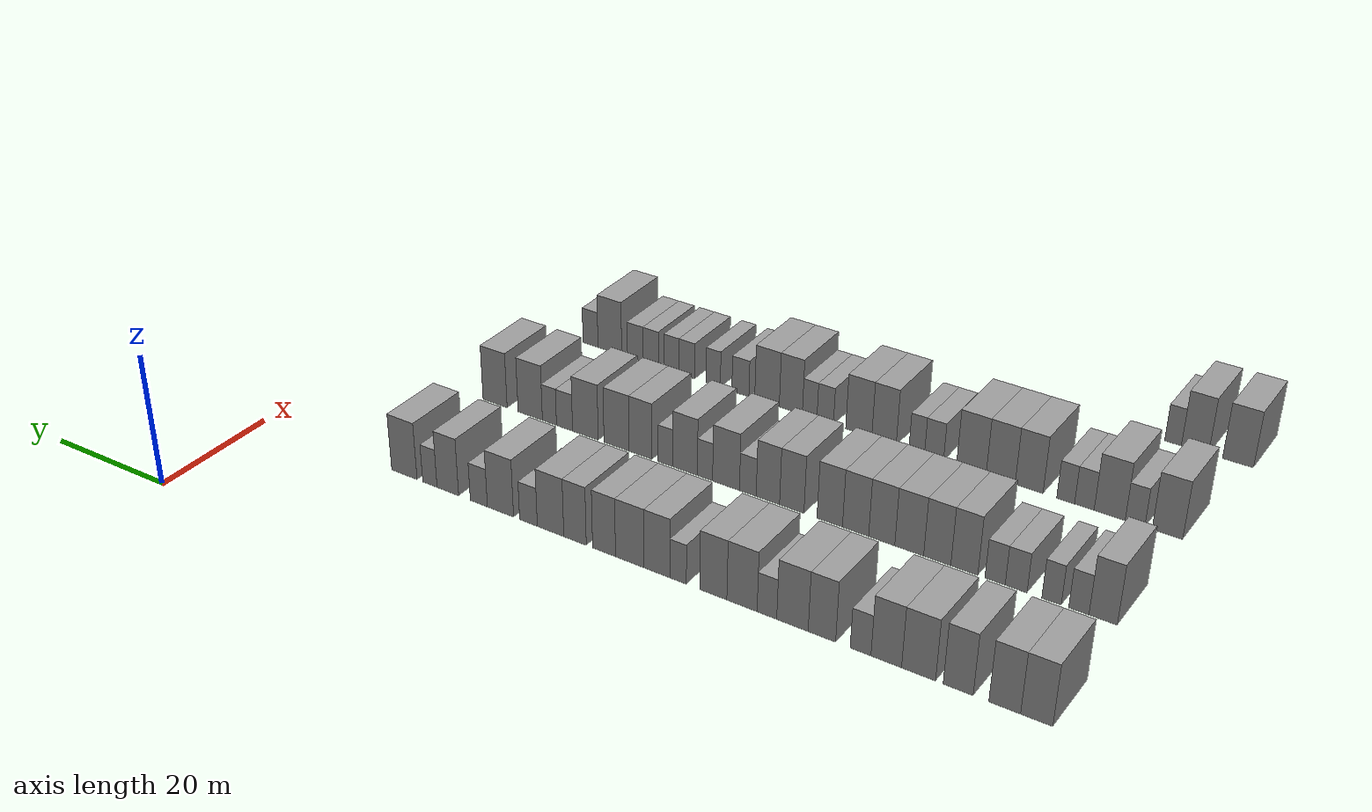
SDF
<sdf version="1.6">
 <world name="default">
  <model name="building_69">
   <static>1</static>
   <pose>25.0000 -119.9293 0 0.000000 0.000000 0.000000</pose>
   <link name="link">
    <pose>0 0 4.50 0 0 0</pose>
    <collision name="collision"><geometry><box><size>10.0000 4.0028 9.0000</size></box></geometry></collision>
    <visual name="visual">
     <cast_shadows>0</cast_shadows>
     <geometry><box><size>10.0000 4.0028 9.0000</size></box></geometry>
     <material>
      <script>
       <uri>model://grey_wall/materials/scripts</uri>
       <uri>model://grey_wall/materials/textures</uri>
       <name>vrc/grey_wall</name>
      </script>
     </material>
    </visual>
   </link>
  </model>
  <model name="building_70">
   <static>1</static>
   <pose>25.0000 -115.9255 0 0.000000 0.000000 0.000000</pose>
   <link name="link">
    <pose>0 0 4.50 0 0 0</pose>
    <collision name="collision"><geometry><box><size>10.0000 4.0048 9.0000</size></box></geometry></collision>
    <visual name="visual">
     <cast_shadows>0</cast_shadows>
     <geometry><box><size>10.0000 4.0048 9.0000</size></box></geometry>
     <material>
      <script>
       <uri>model://grey_wall/materials/scripts</uri>
       <uri>model://grey_wall/materials/textures</uri>
       <name>vrc/grey_wall</name>
      </script>
     </material>
    </visual>
   </link>
  </model>
  <model name="building_71">
   <static>1</static>
   <pose>25.0000 -109.9842 0 0.000000 0.000000 0.000000</pose>
   <link name="link">
    <pose>0 0 4.50 0 0 0</pose>
    <collision name="collision"><geometry><box><size>10.0000 3.8778 9.0000</size></box></geometry></collision>
    <visual name="visual">
     <cast_shadows>0</cast_shadows>
     <geometry><box><size>10.0000 3.8778 9.0000</size></box></geometry>
     <material>
      <script>
       <uri>model://grey_wall/materials/scripts</uri>
       <uri>model://grey_wall/materials/textures</uri>
       <name>vrc/grey_wall</name>
      </script>
     </material>
    </visual>
   </link>
  </model>
  <model name="building_72">
   <static>1</static>
   <pose>25.0000 -104.8020 0 0.000000 0.000000 0.000000</pose>
   <link name="link">
    <pose>0 0 4.50 0 0 0</pose>
    <collision name="collision"><geometry><box><size>10.0000 4.4866 9.0000</size></box></geometry></collision>
    <visual name="visual">
     <cast_shadows>0</cast_shadows>
     <geometry><box><size>10.0000 4.4866 9.0000</size></box></geometry>
     <material>
      <script>
       <uri>model://grey_wall/materials/scripts</uri>
       <uri>model://grey_wall/materials/textures</uri>
       <name>vrc/grey_wall</name>
      </script>
     </material>
    </visual>
   </link>
  </model>
  <model name="building_73">
   <static>1</static>
   <pose>25.0000 -100.5021 0 0.000000 0.000000 0.000000</pose>
   <link name="link">
    <pose>0 0 4.50 0 0 0</pose>
    <collision name="collision"><geometry><box><size>10.0000 4.1132 9.0000</size></box></geometry></collision>
    <visual name="visual">
     <cast_shadows>0</cast_shadows>
     <geometry><box><size>10.0000 4.1132 9.0000</size></box></geometry>
     <material>
      <script>
       <uri>model://grey_wall/materials/scripts</uri>
       <uri>model://grey_wall/materials/textures</uri>
       <name>vrc/grey_wall</name>
      </script>
     </material>
    </visual>
   </link>
  </model>
  <model name="building_74">
   <static>1</static>
   <pose>25.0000 -97.0339 0 0.000000 0.000000 0.000000</pose>
   <link name="link">
    <pose>0 0 3.00 0 0 0</pose>
    <collision name="collision"><geometry><box><size>10.0000 2.8233 6.0000</size></box></geometry></collision>
    <visual name="visual">
     <cast_shadows>0</cast_shadows>
     <geometry><box><size>10.0000 2.8233 6.0000</size></box></geometry>
     <material>
      <script>
       <uri>model://grey_wall/materials/scripts</uri>
       <uri>model://grey_wall/materials/textures</uri>
       <name>vrc/grey_wall</name>
      </script>
     </material>
    </visual>
   </link>
  </model>
  <model name="building_75">
   <static>1</static>
   <pose>25.0000 -91.7077 0 0.000000 0.000000 0.000000</pose>
   <link name="link">
    <pose>0 0 4.50 0 0 0</pose>
    <collision name="collision"><geometry><box><size>10.0000 3.8291 9.0000</size></box></geometry></collision>
    <visual name="visual">
     <cast_shadows>0</cast_shadows>
     <geometry><box><size>10.0000 3.8291 9.0000</size></box></geometry>
     <material>
      <script>
       <uri>model://grey_wall/materials/scripts</uri>
       <uri>model://grey_wall/materials/textures</uri>
       <name>vrc/grey_wall</name>
      </script>
     </material>
    </visual>
   </link>
  </model>
  <model name="building_76">
   <static>1</static>
   <pose>25.0000 -87.5703 0 0.000000 0.000000 0.000000</pose>
   <link name="link">
    <pose>0 0 4.50 0 0 0</pose>
    <collision name="collision"><geometry><box><size>10.0000 4.4456 9.0000</size></box></geometry></collision>
    <visual name="visual">
     <cast_shadows>0</cast_shadows>
     <geometry><box><size>10.0000 4.4456 9.0000</size></box></geometry>
     <material>
      <script>
       <uri>model://grey_wall/materials/scripts</uri>
       <uri>model://grey_wall/materials/textures</uri>
       <name>vrc/grey_wall</name>
      </script>
     </material>
    </visual>
   </link>
  </model>
  <model name="building_77">
   <static>1</static>
   <pose>25.0000 -83.9391 0 0.000000 0.000000 0.000000</pose>
   <link name="link">
    <pose>0 0 3.00 0 0 0</pose>
    <collision name="collision"><geometry><box><size>10.0000 2.8168 6.0000</size></box></geometry></collision>
    <visual name="visual">
     <cast_shadows>0</cast_shadows>
     <geometry><box><size>10.0000 2.8168 6.0000</size></box></geometry>
     <material>
      <script>
       <uri>model://grey_wall/materials/scripts</uri>
       <uri>model://grey_wall/materials/textures</uri>
       <name>vrc/grey_wall</name>
      </script>
     </material>
    </visual>
   </link>
  </model>
  <model name="building_78">
   <static>1</static>
   <pose>25.0000 -80.3285 0 0.000000 0.000000 0.000000</pose>
   <link name="link">
    <pose>0 0 4.50 0 0 0</pose>
    <collision name="collision"><geometry><box><size>10.0000 4.4043 9.0000</size></box></geometry></collision>
    <visual name="visual">
     <cast_shadows>0</cast_shadows>
     <geometry><box><size>10.0000 4.4043 9.0000</size></box></geometry>
     <material>
      <script>
       <uri>model://grey_wall/materials/scripts</uri>
       <uri>model://grey_wall/materials/textures</uri>
       <name>vrc/grey_wall</name>
      </script>
     </material>
    </visual>
   </link>
  </model>
  <model name="building_79">
   <static>1</static>
   <pose>25.0000 -76.1174 0 0.000000 0.000000 0.000000</pose>
   <link name="link">
    <pose>0 0 4.50 0 0 0</pose>
    <collision name="collision"><geometry><box><size>10.0000 4.0180 9.0000</size></box></geometry></collision>
    <visual name="visual">
     <cast_shadows>0</cast_shadows>
     <geometry><box><size>10.0000 4.0180 9.0000</size></box></geometry>
     <material>
      <script>
       <uri>model://grey_wall/materials/scripts</uri>
       <uri>model://grey_wall/materials/textures</uri>
       <name>vrc/grey_wall</name>
      </script>
     </material>
    </visual>
   </link>
  </model>
  <model name="building_80">
   <static>1</static>
   <pose>25.0000 -70.8744 0 0.000000 0.000000 0.000000</pose>
   <link name="link">
    <pose>0 0 3.00 0 0 0</pose>
    <collision name="collision"><geometry><box><size>10.0000 2.4681 6.0000</size></box></geometry></collision>
    <visual name="visual">
     <cast_shadows>0</cast_shadows>
     <geometry><box><size>10.0000 2.4681 6.0000</size></box></geometry>
     <material>
      <script>
       <uri>model://grey_wall/materials/scripts</uri>
       <uri>model://grey_wall/materials/textures</uri>
       <name>vrc/grey_wall</name>
      </script>
     </material>
    </visual>
   </link>
  </model>
  <model name="building_81">
   <static>1</static>
   <pose>25.0000 -67.6625 0 0.000000 0.000000 0.000000</pose>
   <link name="link">
    <pose>0 0 4.50 0 0 0</pose>
    <collision name="collision"><geometry><box><size>10.0000 3.9556 9.0000</size></box></geometry></collision>
    <visual name="visual">
     <cast_shadows>0</cast_shadows>
     <geometry><box><size>10.0000 3.9556 9.0000</size></box></geometry>
     <material>
      <script>
       <uri>model://grey_wall/materials/scripts</uri>
       <uri>model://grey_wall/materials/textures</uri>
       <name>vrc/grey_wall</name>
      </script>
     </material>
    </visual>
   </link>
  </model>
  <model name="building_82">
   <static>1</static>
   <pose>25.0000 -63.4685 0 0.000000 0.000000 0.000000</pose>
   <link name="link">
    <pose>0 0 4.50 0 0 0</pose>
    <collision name="collision"><geometry><box><size>10.0000 4.4324 9.0000</size></box></geometry></collision>
    <visual name="visual">
     <cast_shadows>0</cast_shadows>
     <geometry><box><size>10.0000 4.4324 9.0000</size></box></geometry>
     <material>
      <script>
       <uri>model://grey_wall/materials/scripts</uri>
       <uri>model://grey_wall/materials/textures</uri>
       <name>vrc/grey_wall</name>
      </script>
     </material>
    </visual>
   </link>
  </model>
  <model name="building_83">
   <static>1</static>
   <pose>25.0000 -59.4488 0 0.000000 0.000000 0.000000</pose>
   <link name="link">
    <pose>0 0 4.50 0 0 0</pose>
    <collision name="collision"><geometry><box><size>10.0000 3.6071 9.0000</size></box></geometry></collision>
    <visual name="visual">
     <cast_shadows>0</cast_shadows>
     <geometry><box><size>10.0000 3.6071 9.0000</size></box></geometry>
     <material>
      <script>
       <uri>model://grey_wall/materials/scripts</uri>
       <uri>model://grey_wall/materials/textures</uri>
       <name>vrc/grey_wall</name>
      </script>
     </material>
    </visual>
   </link>
  </model>
  <model name="building_84">
   <static>1</static>
   <pose>25.0000 -54.8431 0 0.000000 0.000000 0.000000</pose>
   <link name="link">
    <pose>0 0 4.50 0 0 0</pose>
    <collision name="collision"><geometry><box><size>10.0000 3.6042 9.0000</size></box></geometry></collision>
    <visual name="visual">
     <cast_shadows>0</cast_shadows>
     <geometry><box><size>10.0000 3.6042 9.0000</size></box></geometry>
     <material>
      <script>
       <uri>model://grey_wall/materials/scripts</uri>
       <uri>model://grey_wall/materials/textures</uri>
       <name>vrc/grey_wall</name>
      </script>
     </material>
    </visual>
   </link>
  </model>
  <model name="building_85">
   <static>1</static>
   <pose>25.0000 -50.8898 0 0.000000 0.000000 0.000000</pose>
   <link name="link">
    <pose>0 0 4.50 0 0 0</pose>
    <collision name="collision"><geometry><box><size>10.0000 4.3024 9.0000</size></box></geometry></collision>
    <visual name="visual">
     <cast_shadows>0</cast_shadows>
     <geometry><box><size>10.0000 4.3024 9.0000</size></box></geometry>
     <material>
      <script>
       <uri>model://grey_wall/materials/scripts</uri>
       <uri>model://grey_wall/materials/textures</uri>
       <name>vrc/grey_wall</name>
      </script>
     </material>
    </visual>
   </link>
  </model>
  <model name="building_86">
   <static>1</static>
   <pose>25.0000 -47.2796 0 0.000000 0.000000 0.000000</pose>
   <link name="link">
    <pose>0 0 3.00 0 0 0</pose>
    <collision name="collision"><geometry><box><size>10.0000 2.9182 6.0000</size></box></geometry></collision>
    <visual name="visual">
     <cast_shadows>0</cast_shadows>
     <geometry><box><size>10.0000 2.9182 6.0000</size></box></geometry>
     <material>
      <script>
       <uri>model://grey_wall/materials/scripts</uri>
       <uri>model://grey_wall/materials/textures</uri>
       <name>vrc/grey_wall</name>
      </script>
     </material>
    </visual>
   </link>
  </model>
  <model name="building_87">
   <static>1</static>
   <pose>25.0000 -42.6249 0 0.000000 0.000000 0.000000</pose>
   <link name="link">
    <pose>0 0 4.50 0 0 0</pose>
    <collision name="collision"><geometry><box><size>10.0000 4.3910 9.0000</size></box></geometry></collision>
    <visual name="visual">
     <cast_shadows>0</cast_shadows>
     <geometry><box><size>10.0000 4.3910 9.0000</size></box></geometry>
     <material>
      <script>
       <uri>model://grey_wall/materials/scripts</uri>
       <uri>model://grey_wall/materials/textures</uri>
       <name>vrc/grey_wall</name>
      </script>
     </material>
    </visual>
   </link>
  </model>
  <model name="building_88">
   <static>1</static>
   <pose>25.0000 -38.9806 0 0.000000 0.000000 0.000000</pose>
   <link name="link">
    <pose>0 0 3.00 0 0 0</pose>
    <collision name="collision"><geometry><box><size>10.0000 2.8977 6.0000</size></box></geometry></collision>
    <visual name="visual">
     <cast_shadows>0</cast_shadows>
     <geometry><box><size>10.0000 2.8977 6.0000</size></box></geometry>
     <material>
      <script>
       <uri>model://grey_wall/materials/scripts</uri>
       <uri>model://grey_wall/materials/textures</uri>
       <name>vrc/grey_wall</name>
      </script>
     </material>
    </visual>
   </link>
  </model>
  <model name="building_89">
   <static>1</static>
   <pose>25.0000 -33.6616 0 0.000000 0.000000 0.000000</pose>
   <link name="link">
    <pose>0 0 4.50 0 0 0</pose>
    <collision name="collision"><geometry><box><size>10.0000 3.7403 9.0000</size></box></geometry></collision>
    <visual name="visual">
     <cast_shadows>0</cast_shadows>
     <geometry><box><size>10.0000 3.7403 9.0000</size></box></geometry>
     <material>
      <script>
       <uri>model://grey_wall/materials/scripts</uri>
       <uri>model://grey_wall/materials/textures</uri>
       <name>vrc/grey_wall</name>
      </script>
     </material>
    </visual>
   </link>
  </model>
  <model name="building_90">
   <static>1</static>
   <pose>25.0000 -30.5410 0 0.000000 0.000000 0.000000</pose>
   <link name="link">
    <pose>0 0 3.00 0 0 0</pose>
    <collision name="collision"><geometry><box><size>10.0000 2.5008 6.0000</size></box></geometry></collision>
    <visual name="visual">
     <cast_shadows>0</cast_shadows>
     <geometry><box><size>10.0000 2.5008 6.0000</size></box></geometry>
     <material>
      <script>
       <uri>model://grey_wall/materials/scripts</uri>
       <uri>model://grey_wall/materials/textures</uri>
       <name>vrc/grey_wall</name>
      </script>
     </material>
    </visual>
   </link>
  </model>
  <model name="building_91">
   <static>1</static>
   <pose>25.0000 -26.0437 0 0.000000 0.000000 0.000000</pose>
   <link name="link">
    <pose>0 0 4.50 0 0 0</pose>
    <collision name="collision"><geometry><box><size>10.0000 4.4938 9.0000</size></box></geometry></collision>
    <visual name="visual">
     <cast_shadows>0</cast_shadows>
     <geometry><box><size>10.0000 4.4938 9.0000</size></box></geometry>
     <material>
      <script>
       <uri>model://grey_wall/materials/scripts</uri>
       <uri>model://grey_wall/materials/textures</uri>
       <name>vrc/grey_wall</name>
      </script>
     </material>
    </visual>
   </link>
  </model>
  <model name="building_253">
   <static>1</static>
   <pose>47.0000 -118.9703 0 0.000000 0.000000 0.000000</pose>
   <link name="link">
    <pose>0 0 4.50 0 0 0</pose>
    <collision name="collision"><geometry><box><size>10.0000 3.7164 9.0000</size></box></geometry></collision>
    <visual name="visual">
     <cast_shadows>0</cast_shadows>
     <geometry><box><size>10.0000 3.7164 9.0000</size></box></geometry>
     <material>
      <script>
       <uri>model://grey_wall/materials/scripts</uri>
       <uri>model://grey_wall/materials/textures</uri>
       <name>vrc/grey_wall</name>
      </script>
     </material>
    </visual>
   </link>
  </model>
  <model name="building_254">
   <static>1</static>
   <pose>47.0000 -115.7738 0 0.000000 0.000000 0.000000</pose>
   <link name="link">
    <pose>0 0 3.00 0 0 0</pose>
    <collision name="collision"><geometry><box><size>10.0000 2.6766 6.0000</size></box></geometry></collision>
    <visual name="visual">
     <cast_shadows>0</cast_shadows>
     <geometry><box><size>10.0000 2.6766 6.0000</size></box></geometry>
     <material>
      <script>
       <uri>model://grey_wall/materials/scripts</uri>
       <uri>model://grey_wall/materials/textures</uri>
       <name>vrc/grey_wall</name>
      </script>
     </material>
    </visual>
   </link>
  </model>
  <model name="building_255">
   <static>1</static>
   <pose>47.0000 -112.1340 0 0.000000 0.000000 0.000000</pose>
   <link name="link">
    <pose>0 0 3.00 0 0 0</pose>
    <collision name="collision"><geometry><box><size>10.0000 2.6032 6.0000</size></box></geometry></collision>
    <visual name="visual">
     <cast_shadows>0</cast_shadows>
     <geometry><box><size>10.0000 2.6032 6.0000</size></box></geometry>
     <material>
      <script>
       <uri>model://grey_wall/materials/scripts</uri>
       <uri>model://grey_wall/materials/textures</uri>
       <name>vrc/grey_wall</name>
      </script>
     </material>
    </visual>
   </link>
  </model>
  <model name="building_256">
   <static>1</static>
   <pose>47.0000 -107.3387 0 0.000000 0.000000 0.000000</pose>
   <link name="link">
    <pose>0 0 3.00 0 0 0</pose>
    <collision name="collision"><geometry><box><size>10.0000 2.9873 6.0000</size></box></geometry></collision>
    <visual name="visual">
     <cast_shadows>0</cast_shadows>
     <geometry><box><size>10.0000 2.9873 6.0000</size></box></geometry>
     <material>
      <script>
       <uri>model://grey_wall/materials/scripts</uri>
       <uri>model://grey_wall/materials/textures</uri>
       <name>vrc/grey_wall</name>
      </script>
     </material>
    </visual>
   </link>
  </model>
  <model name="building_257">
   <static>1</static>
   <pose>47.0000 -104.4470 0 0.000000 0.000000 0.000000</pose>
   <link name="link">
    <pose>0 0 3.00 0 0 0</pose>
    <collision name="collision"><geometry><box><size>10.0000 2.7962 6.0000</size></box></geometry></collision>
    <visual name="visual">
     <cast_shadows>0</cast_shadows>
     <geometry><box><size>10.0000 2.7962 6.0000</size></box></geometry>
     <material>
      <script>
       <uri>model://grey_wall/materials/scripts</uri>
       <uri>model://grey_wall/materials/textures</uri>
       <name>vrc/grey_wall</name>
      </script>
     </material>
    </visual>
   </link>
  </model>
  <model name="building_258">
   <static>1</static>
   <pose>47.0000 -100.1510 0 0.000000 0.000000 0.000000</pose>
   <link name="link">
    <pose>0 0 4.50 0 0 0</pose>
    <collision name="collision"><geometry><box><size>10.0000 3.7957 9.0000</size></box></geometry></collision>
    <visual name="visual">
     <cast_shadows>0</cast_shadows>
     <geometry><box><size>10.0000 3.7957 9.0000</size></box></geometry>
     <material>
      <script>
       <uri>model://grey_wall/materials/scripts</uri>
       <uri>model://grey_wall/materials/textures</uri>
       <name>vrc/grey_wall</name>
      </script>
     </material>
    </visual>
   </link>
  </model>
  <model name="building_259">
   <static>1</static>
   <pose>47.0000 -96.3190 0 0.000000 0.000000 0.000000</pose>
   <link name="link">
    <pose>0 0 4.50 0 0 0</pose>
    <collision name="collision"><geometry><box><size>10.0000 3.8684 9.0000</size></box></geometry></collision>
    <visual name="visual">
     <cast_shadows>0</cast_shadows>
     <geometry><box><size>10.0000 3.8684 9.0000</size></box></geometry>
     <material>
      <script>
       <uri>model://grey_wall/materials/scripts</uri>
       <uri>model://grey_wall/materials/textures</uri>
       <name>vrc/grey_wall</name>
      </script>
     </material>
    </visual>
   </link>
  </model>
  <model name="building_260">
   <static>1</static>
   <pose>47.0000 -92.2945 0 0.000000 0.000000 0.000000</pose>
   <link name="link">
    <pose>0 0 4.50 0 0 0</pose>
    <collision name="collision"><geometry><box><size>10.0000 4.1805 9.0000</size></box></geometry></collision>
    <visual name="visual">
     <cast_shadows>0</cast_shadows>
     <geometry><box><size>10.0000 4.1805 9.0000</size></box></geometry>
     <material>
      <script>
       <uri>model://grey_wall/materials/scripts</uri>
       <uri>model://grey_wall/materials/textures</uri>
       <name>vrc/grey_wall</name>
      </script>
     </material>
    </visual>
   </link>
  </model>
  <model name="building_261">
   <static>1</static>
   <pose>47.0000 -88.2812 0 0.000000 0.000000 0.000000</pose>
   <link name="link">
    <pose>0 0 4.50 0 0 0</pose>
    <collision name="collision"><geometry><box><size>10.0000 3.8461 9.0000</size></box></geometry></collision>
    <visual name="visual">
     <cast_shadows>0</cast_shadows>
     <geometry><box><size>10.0000 3.8461 9.0000</size></box></geometry>
     <material>
      <script>
       <uri>model://grey_wall/materials/scripts</uri>
       <uri>model://grey_wall/materials/textures</uri>
       <name>vrc/grey_wall</name>
      </script>
     </material>
    </visual>
   </link>
  </model>
  <model name="building_262">
   <static>1</static>
   <pose>47.0000 -84.4106 0 0.000000 0.000000 0.000000</pose>
   <link name="link">
    <pose>0 0 4.50 0 0 0</pose>
    <collision name="collision"><geometry><box><size>10.0000 3.8952 9.0000</size></box></geometry></collision>
    <visual name="visual">
     <cast_shadows>0</cast_shadows>
     <geometry><box><size>10.0000 3.8952 9.0000</size></box></geometry>
     <material>
      <script>
       <uri>model://grey_wall/materials/scripts</uri>
       <uri>model://grey_wall/materials/textures</uri>
       <name>vrc/grey_wall</name>
      </script>
     </material>
    </visual>
   </link>
  </model>
  <model name="building_263">
   <static>1</static>
   <pose>47.0000 -80.5440 0 0.000000 0.000000 0.000000</pose>
   <link name="link">
    <pose>0 0 4.50 0 0 0</pose>
    <collision name="collision"><geometry><box><size>10.0000 3.8381 9.0000</size></box></geometry></collision>
    <visual name="visual">
     <cast_shadows>0</cast_shadows>
     <geometry><box><size>10.0000 3.8381 9.0000</size></box></geometry>
     <material>
      <script>
       <uri>model://grey_wall/materials/scripts</uri>
       <uri>model://grey_wall/materials/textures</uri>
       <name>vrc/grey_wall</name>
      </script>
     </material>
    </visual>
   </link>
  </model>
  <model name="building_264">
   <static>1</static>
   <pose>47.0000 -74.7407 0 0.000000 0.000000 0.000000</pose>
   <link name="link">
    <pose>0 0 4.50 0 0 0</pose>
    <collision name="collision"><geometry><box><size>10.0000 3.7683 9.0000</size></box></geometry></collision>
    <visual name="visual">
     <cast_shadows>0</cast_shadows>
     <geometry><box><size>10.0000 3.7683 9.0000</size></box></geometry>
     <material>
      <script>
       <uri>model://grey_wall/materials/scripts</uri>
       <uri>model://grey_wall/materials/textures</uri>
       <name>vrc/grey_wall</name>
      </script>
     </material>
    </visual>
   </link>
  </model>
  <model name="building_265">
   <static>1</static>
   <pose>47.0000 -71.0256 0 0.000000 0.000000 0.000000</pose>
   <link name="link">
    <pose>0 0 4.50 0 0 0</pose>
    <collision name="collision"><geometry><box><size>10.0000 3.6620 9.0000</size></box></geometry></collision>
    <visual name="visual">
     <cast_shadows>0</cast_shadows>
     <geometry><box><size>10.0000 3.6620 9.0000</size></box></geometry>
     <material>
      <script>
       <uri>model://grey_wall/materials/scripts</uri>
       <uri>model://grey_wall/materials/textures</uri>
       <name>vrc/grey_wall</name>
      </script>
     </material>
    </visual>
   </link>
  </model>
  <model name="building_266">
   <static>1</static>
   <pose>47.0000 -67.8751 0 0.000000 0.000000 0.000000</pose>
   <link name="link">
    <pose>0 0 3.00 0 0 0</pose>
    <collision name="collision"><geometry><box><size>10.0000 2.6389 6.0000</size></box></geometry></collision>
    <visual name="visual">
     <cast_shadows>0</cast_shadows>
     <geometry><box><size>10.0000 2.6389 6.0000</size></box></geometry>
     <material>
      <script>
       <uri>model://grey_wall/materials/scripts</uri>
       <uri>model://grey_wall/materials/textures</uri>
       <name>vrc/grey_wall</name>
      </script>
     </material>
    </visual>
   </link>
  </model>
  <model name="building_267">
   <static>1</static>
   <pose>47.0000 -64.4017 0 0.000000 0.000000 0.000000</pose>
   <link name="link">
    <pose>0 0 4.50 0 0 0</pose>
    <collision name="collision"><geometry><box><size>10.0000 4.3079 9.0000</size></box></geometry></collision>
    <visual name="visual">
     <cast_shadows>0</cast_shadows>
     <geometry><box><size>10.0000 4.3079 9.0000</size></box></geometry>
     <material>
      <script>
       <uri>model://grey_wall/materials/scripts</uri>
       <uri>model://grey_wall/materials/textures</uri>
       <name>vrc/grey_wall</name>
      </script>
     </material>
    </visual>
   </link>
  </model>
  <model name="building_268">
   <static>1</static>
   <pose>47.0000 -61.0117 0 0.000000 0.000000 0.000000</pose>
   <link name="link">
    <pose>0 0 3.00 0 0 0</pose>
    <collision name="collision"><geometry><box><size>10.0000 2.4722 6.0000</size></box></geometry></collision>
    <visual name="visual">
     <cast_shadows>0</cast_shadows>
     <geometry><box><size>10.0000 2.4722 6.0000</size></box></geometry>
     <material>
      <script>
       <uri>model://grey_wall/materials/scripts</uri>
       <uri>model://grey_wall/materials/textures</uri>
       <name>vrc/grey_wall</name>
      </script>
     </material>
    </visual>
   </link>
  </model>
  <model name="building_269">
   <static>1</static>
   <pose>47.0000 -57.7539 0 0.000000 0.000000 0.000000</pose>
   <link name="link">
    <pose>0 0 4.50 0 0 0</pose>
    <collision name="collision"><geometry><box><size>10.0000 4.0433 9.0000</size></box></geometry></collision>
    <visual name="visual">
     <cast_shadows>0</cast_shadows>
     <geometry><box><size>10.0000 4.0433 9.0000</size></box></geometry>
     <material>
      <script>
       <uri>model://grey_wall/materials/scripts</uri>
       <uri>model://grey_wall/materials/textures</uri>
       <name>vrc/grey_wall</name>
      </script>
     </material>
    </visual>
   </link>
  </model>
  <model name="building_270">
   <static>1</static>
   <pose>47.0000 -54.5268 0 0.000000 0.000000 0.000000</pose>
   <link name="link">
    <pose>0 0 3.00 0 0 0</pose>
    <collision name="collision"><geometry><box><size>10.0000 2.4109 6.0000</size></box></geometry></collision>
    <visual name="visual">
     <cast_shadows>0</cast_shadows>
     <geometry><box><size>10.0000 2.4109 6.0000</size></box></geometry>
     <material>
      <script>
       <uri>model://grey_wall/materials/scripts</uri>
       <uri>model://grey_wall/materials/textures</uri>
       <name>vrc/grey_wall</name>
      </script>
     </material>
    </visual>
   </link>
  </model>
  <model name="building_271">
   <static>1</static>
   <pose>47.0000 -50.3864 0 0.000000 0.000000 0.000000</pose>
   <link name="link">
    <pose>0 0 4.50 0 0 0</pose>
    <collision name="collision"><geometry><box><size>10.0000 3.8698 9.0000</size></box></geometry></collision>
    <visual name="visual">
     <cast_shadows>0</cast_shadows>
     <geometry><box><size>10.0000 3.8698 9.0000</size></box></geometry>
     <material>
      <script>
       <uri>model://grey_wall/materials/scripts</uri>
       <uri>model://grey_wall/materials/textures</uri>
       <name>vrc/grey_wall</name>
      </script>
     </material>
    </visual>
   </link>
  </model>
  <model name="building_272">
   <static>1</static>
   <pose>47.0000 -46.3098 0 0.000000 0.000000 0.000000</pose>
   <link name="link">
    <pose>0 0 4.50 0 0 0</pose>
    <collision name="collision"><geometry><box><size>10.0000 4.2835 9.0000</size></box></geometry></collision>
    <visual name="visual">
     <cast_shadows>0</cast_shadows>
     <geometry><box><size>10.0000 4.2835 9.0000</size></box></geometry>
     <material>
      <script>
       <uri>model://grey_wall/materials/scripts</uri>
       <uri>model://grey_wall/materials/textures</uri>
       <name>vrc/grey_wall</name>
      </script>
     </material>
    </visual>
   </link>
  </model>
  <model name="building_273">
   <static>1</static>
   <pose>47.0000 -40.9435 0 0.000000 0.000000 0.000000</pose>
   <link name="link">
    <pose>0 0 4.50 0 0 0</pose>
    <collision name="collision"><geometry><box><size>10.0000 4.4490 9.0000</size></box></geometry></collision>
    <visual name="visual">
     <cast_shadows>0</cast_shadows>
     <geometry><box><size>10.0000 4.4490 9.0000</size></box></geometry>
     <material>
      <script>
       <uri>model://grey_wall/materials/scripts</uri>
       <uri>model://grey_wall/materials/textures</uri>
       <name>vrc/grey_wall</name>
      </script>
     </material>
    </visual>
   </link>
  </model>
  <model name="building_274">
   <static>1</static>
   <pose>47.0000 -37.3035 0 0.000000 0.000000 0.000000</pose>
   <link name="link">
    <pose>0 0 3.00 0 0 0</pose>
    <collision name="collision"><geometry><box><size>10.0000 2.8309 6.0000</size></box></geometry></collision>
    <visual name="visual">
     <cast_shadows>0</cast_shadows>
     <geometry><box><size>10.0000 2.8309 6.0000</size></box></geometry>
     <material>
      <script>
       <uri>model://grey_wall/materials/scripts</uri>
       <uri>model://grey_wall/materials/textures</uri>
       <name>vrc/grey_wall</name>
      </script>
     </material>
    </visual>
   </link>
  </model>
  <model name="building_275">
   <static>1</static>
   <pose>47.0000 -34.6394 0 0.000000 0.000000 0.000000</pose>
   <link name="link">
    <pose>0 0 3.00 0 0 0</pose>
    <collision name="collision"><geometry><box><size>10.0000 2.4973 6.0000</size></box></geometry></collision>
    <visual name="visual">
     <cast_shadows>0</cast_shadows>
     <geometry><box><size>10.0000 2.4973 6.0000</size></box></geometry>
     <material>
      <script>
       <uri>model://grey_wall/materials/scripts</uri>
       <uri>model://grey_wall/materials/textures</uri>
       <name>vrc/grey_wall</name>
      </script>
     </material>
    </visual>
   </link>
  </model>
  <model name="building_276">
   <static>1</static>
   <pose>47.0000 -31.2110 0 0.000000 0.000000 0.000000</pose>
   <link name="link">
    <pose>0 0 4.50 0 0 0</pose>
    <collision name="collision"><geometry><box><size>10.0000 4.3596 9.0000</size></box></geometry></collision>
    <visual name="visual">
     <cast_shadows>0</cast_shadows>
     <geometry><box><size>10.0000 4.3596 9.0000</size></box></geometry>
     <material>
      <script>
       <uri>model://grey_wall/materials/scripts</uri>
       <uri>model://grey_wall/materials/textures</uri>
       <name>vrc/grey_wall</name>
      </script>
     </material>
    </visual>
   </link>
  </model>
  <model name="building_277">
   <static>1</static>
   <pose>47.0000 -24.8355 0 0.000000 0.000000 0.000000</pose>
   <link name="link">
    <pose>0 0 4.50 0 0 0</pose>
    <collision name="collision"><geometry><box><size>10.0000 4.3913 9.0000</size></box></geometry></collision>
    <visual name="visual">
     <cast_shadows>0</cast_shadows>
     <geometry><box><size>10.0000 4.3913 9.0000</size></box></geometry>
     <material>
      <script>
       <uri>model://grey_wall/materials/scripts</uri>
       <uri>model://grey_wall/materials/textures</uri>
       <name>vrc/grey_wall</name>
      </script>
     </material>
    </visual>
   </link>
  </model>
  <model name="building_449">
   <static>1</static>
   <pose>69.0000 -118.8570 0 0.000000 0.000000 0.000000</pose>
   <link name="link">
    <pose>0 0 4.50 0 0 0</pose>
    <collision name="collision"><geometry><box><size>10.0000 4.1951 9.0000</size></box></geometry></collision>
    <visual name="visual">
     <cast_shadows>0</cast_shadows>
     <geometry><box><size>10.0000 4.1951 9.0000</size></box></geometry>
     <material>
      <script>
       <uri>model://grey_wall/materials/scripts</uri>
       <uri>model://grey_wall/materials/textures</uri>
       <name>vrc/grey_wall</name>
      </script>
     </material>
    </visual>
   </link>
  </model>
  <model name="building_450">
   <static>1</static>
   <pose>69.0000 -114.3896 0 0.000000 0.000000 0.000000</pose>
   <link name="link">
    <pose>0 0 3.00 0 0 0</pose>
    <collision name="collision"><geometry><box><size>10.0000 2.7396 6.0000</size></box></geometry></collision>
    <visual name="visual">
     <cast_shadows>0</cast_shadows>
     <geometry><box><size>10.0000 2.7396 6.0000</size></box></geometry>
     <material>
      <script>
       <uri>model://grey_wall/materials/scripts</uri>
       <uri>model://grey_wall/materials/textures</uri>
       <name>vrc/grey_wall</name>
      </script>
     </material>
    </visual>
   </link>
  </model>
  <model name="building_451">
   <static>1</static>
   <pose>69.0000 -110.8301 0 0.000000 0.000000 0.000000</pose>
   <link name="link">
    <pose>0 0 4.50 0 0 0</pose>
    <collision name="collision"><geometry><box><size>10.0000 4.3794 9.0000</size></box></geometry></collision>
    <visual name="visual">
     <cast_shadows>0</cast_shadows>
     <geometry><box><size>10.0000 4.3794 9.0000</size></box></geometry>
     <material>
      <script>
       <uri>model://grey_wall/materials/scripts</uri>
       <uri>model://grey_wall/materials/textures</uri>
       <name>vrc/grey_wall</name>
      </script>
     </material>
    </visual>
   </link>
  </model>
  <model name="building_452">
   <static>1</static>
   <pose>69.0000 -107.2457 0 0.000000 0.000000 0.000000</pose>
   <link name="link">
    <pose>0 0 3.00 0 0 0</pose>
    <collision name="collision"><geometry><box><size>10.0000 2.7895 6.0000</size></box></geometry></collision>
    <visual name="visual">
     <cast_shadows>0</cast_shadows>
     <geometry><box><size>10.0000 2.7895 6.0000</size></box></geometry>
     <material>
      <script>
       <uri>model://grey_wall/materials/scripts</uri>
       <uri>model://grey_wall/materials/textures</uri>
       <name>vrc/grey_wall</name>
      </script>
     </material>
    </visual>
   </link>
  </model>
  <model name="building_453">
   <static>1</static>
   <pose>69.0000 -104.5624 0 0.000000 0.000000 0.000000</pose>
   <link name="link">
    <pose>0 0 3.00 0 0 0</pose>
    <collision name="collision"><geometry><box><size>10.0000 2.5770 6.0000</size></box></geometry></collision>
    <visual name="visual">
     <cast_shadows>0</cast_shadows>
     <geometry><box><size>10.0000 2.5770 6.0000</size></box></geometry>
     <material>
      <script>
       <uri>model://grey_wall/materials/scripts</uri>
       <uri>model://grey_wall/materials/textures</uri>
       <name>vrc/grey_wall</name>
      </script>
     </material>
    </visual>
   </link>
  </model>
  <model name="building_454">
   <static>1</static>
   <pose>69.0000 -99.2176 0 0.000000 0.000000 0.000000</pose>
   <link name="link">
    <pose>0 0 4.50 0 0 0</pose>
    <collision name="collision"><geometry><box><size>10.0000 4.1126 9.0000</size></box></geometry></collision>
    <visual name="visual">
     <cast_shadows>0</cast_shadows>
     <geometry><box><size>10.0000 4.1126 9.0000</size></box></geometry>
     <material>
      <script>
       <uri>model://grey_wall/materials/scripts</uri>
       <uri>model://grey_wall/materials/textures</uri>
       <name>vrc/grey_wall</name>
      </script>
     </material>
    </visual>
   </link>
  </model>
  <model name="building_455">
   <static>1</static>
   <pose>69.0000 -94.9979 0 0.000000 0.000000 0.000000</pose>
   <link name="link">
    <pose>0 0 4.50 0 0 0</pose>
    <collision name="collision"><geometry><box><size>10.0000 4.3268 9.0000</size></box></geometry></collision>
    <visual name="visual">
     <cast_shadows>0</cast_shadows>
     <geometry><box><size>10.0000 4.3268 9.0000</size></box></geometry>
     <material>
      <script>
       <uri>model://grey_wall/materials/scripts</uri>
       <uri>model://grey_wall/materials/textures</uri>
       <name>vrc/grey_wall</name>
      </script>
     </material>
    </visual>
   </link>
  </model>
  <model name="building_456">
   <static>1</static>
   <pose>69.0000 -90.5957 0 0.000000 0.000000 0.000000</pose>
   <link name="link">
    <pose>0 0 4.50 0 0 0</pose>
    <collision name="collision"><geometry><box><size>10.0000 4.4777 9.0000</size></box></geometry></collision>
    <visual name="visual">
     <cast_shadows>0</cast_shadows>
     <geometry><box><size>10.0000 4.4777 9.0000</size></box></geometry>
     <material>
      <script>
       <uri>model://grey_wall/materials/scripts</uri>
       <uri>model://grey_wall/materials/textures</uri>
       <name>vrc/grey_wall</name>
      </script>
     </material>
    </visual>
   </link>
  </model>
  <model name="building_457">
   <static>1</static>
   <pose>69.0000 -84.8846 0 0.000000 0.000000 0.000000</pose>
   <link name="link">
    <pose>0 0 3.00 0 0 0</pose>
    <collision name="collision"><geometry><box><size>10.0000 2.9444 6.0000</size></box></geometry></collision>
    <visual name="visual">
     <cast_shadows>0</cast_shadows>
     <geometry><box><size>10.0000 2.9444 6.0000</size></box></geometry>
     <material>
      <script>
       <uri>model://grey_wall/materials/scripts</uri>
       <uri>model://grey_wall/materials/textures</uri>
       <name>vrc/grey_wall</name>
      </script>
     </material>
    </visual>
   </link>
  </model>
  <model name="building_458">
   <static>1</static>
   <pose>69.0000 -82.1966 0 0.000000 0.000000 0.000000</pose>
   <link name="link">
    <pose>0 0 3.00 0 0 0</pose>
    <collision name="collision"><geometry><box><size>10.0000 2.4316 6.0000</size></box></geometry></collision>
    <visual name="visual">
     <cast_shadows>0</cast_shadows>
     <geometry><box><size>10.0000 2.4316 6.0000</size></box></geometry>
     <material>
      <script>
       <uri>model://grey_wall/materials/scripts</uri>
       <uri>model://grey_wall/materials/textures</uri>
       <name>vrc/grey_wall</name>
      </script>
     </material>
    </visual>
   </link>
  </model>
  <model name="building_459">
   <static>1</static>
   <pose>69.0000 -77.0387 0 0.000000 0.000000 0.000000</pose>
   <link name="link">
    <pose>0 0 4.50 0 0 0</pose>
    <collision name="collision"><geometry><box><size>10.0000 3.8842 9.0000</size></box></geometry></collision>
    <visual name="visual">
     <cast_shadows>0</cast_shadows>
     <geometry><box><size>10.0000 3.8842 9.0000</size></box></geometry>
     <material>
      <script>
       <uri>model://grey_wall/materials/scripts</uri>
       <uri>model://grey_wall/materials/textures</uri>
       <name>vrc/grey_wall</name>
      </script>
     </material>
    </visual>
   </link>
  </model>
  <model name="building_460">
   <static>1</static>
   <pose>69.0000 -72.9986 0 0.000000 0.000000 0.000000</pose>
   <link name="link">
    <pose>0 0 4.50 0 0 0</pose>
    <collision name="collision"><geometry><box><size>10.0000 4.1959 9.0000</size></box></geometry></collision>
    <visual name="visual">
     <cast_shadows>0</cast_shadows>
     <geometry><box><size>10.0000 4.1959 9.0000</size></box></geometry>
     <material>
      <script>
       <uri>model://grey_wall/materials/scripts</uri>
       <uri>model://grey_wall/materials/textures</uri>
       <name>vrc/grey_wall</name>
      </script>
     </material>
    </visual>
   </link>
  </model>
  <model name="building_461">
   <static>1</static>
   <pose>69.0000 -67.5477 0 0.000000 0.000000 0.000000</pose>
   <link name="link">
    <pose>0 0 3.00 0 0 0</pose>
    <collision name="collision"><geometry><box><size>10.0000 2.7059 6.0000</size></box></geometry></collision>
    <visual name="visual">
     <cast_shadows>0</cast_shadows>
     <geometry><box><size>10.0000 2.7059 6.0000</size></box></geometry>
     <material>
      <script>
       <uri>model://grey_wall/materials/scripts</uri>
       <uri>model://grey_wall/materials/textures</uri>
       <name>vrc/grey_wall</name>
      </script>
     </material>
    </visual>
   </link>
  </model>
  <model name="building_462">
   <static>1</static>
   <pose>69.0000 -64.9816 0 0.000000 0.000000 0.000000</pose>
   <link name="link">
    <pose>0 0 3.00 0 0 0</pose>
    <collision name="collision"><geometry><box><size>10.0000 2.4264 6.0000</size></box></geometry></collision>
    <visual name="visual">
     <cast_shadows>0</cast_shadows>
     <geometry><box><size>10.0000 2.4264 6.0000</size></box></geometry>
     <material>
      <script>
       <uri>model://grey_wall/materials/scripts</uri>
       <uri>model://grey_wall/materials/textures</uri>
       <name>vrc/grey_wall</name>
      </script>
     </material>
    </visual>
   </link>
  </model>
  <model name="building_463">
   <static>1</static>
   <pose>69.0000 -61.8444 0 0.000000 0.000000 0.000000</pose>
   <link name="link">
    <pose>0 0 4.50 0 0 0</pose>
    <collision name="collision"><geometry><box><size>10.0000 3.8480 9.0000</size></box></geometry></collision>
    <visual name="visual">
     <cast_shadows>0</cast_shadows>
     <geometry><box><size>10.0000 3.8480 9.0000</size></box></geometry>
     <material>
      <script>
       <uri>model://grey_wall/materials/scripts</uri>
       <uri>model://grey_wall/materials/textures</uri>
       <name>vrc/grey_wall</name>
      </script>
     </material>
    </visual>
   </link>
  </model>
  <model name="building_464">
   <static>1</static>
   <pose>69.0000 -57.8375 0 0.000000 0.000000 0.000000</pose>
   <link name="link">
    <pose>0 0 4.50 0 0 0</pose>
    <collision name="collision"><geometry><box><size>10.0000 4.1658 9.0000</size></box></geometry></collision>
    <visual name="visual">
     <cast_shadows>0</cast_shadows>
     <geometry><box><size>10.0000 4.1658 9.0000</size></box></geometry>
     <material>
      <script>
       <uri>model://grey_wall/materials/scripts</uri>
       <uri>model://grey_wall/materials/textures</uri>
       <name>vrc/grey_wall</name>
      </script>
     </material>
    </visual>
   </link>
  </model>
  <model name="building_465">
   <static>1</static>
   <pose>69.0000 -53.2898 0 0.000000 0.000000 0.000000</pose>
   <link name="link">
    <pose>0 0 3.00 0 0 0</pose>
    <collision name="collision"><geometry><box><size>10.0000 2.9295 6.0000</size></box></geometry></collision>
    <visual name="visual">
     <cast_shadows>0</cast_shadows>
     <geometry><box><size>10.0000 2.9295 6.0000</size></box></geometry>
     <material>
      <script>
       <uri>model://grey_wall/materials/scripts</uri>
       <uri>model://grey_wall/materials/textures</uri>
       <name>vrc/grey_wall</name>
      </script>
     </material>
    </visual>
   </link>
  </model>
  <model name="building_466">
   <static>1</static>
   <pose>69.0000 -48.5745 0 0.000000 0.000000 0.000000</pose>
   <link name="link">
    <pose>0 0 3.00 0 0 0</pose>
    <collision name="collision"><geometry><box><size>10.0000 2.5011 6.0000</size></box></geometry></collision>
    <visual name="visual">
     <cast_shadows>0</cast_shadows>
     <geometry><box><size>10.0000 2.5011 6.0000</size></box></geometry>
     <material>
      <script>
       <uri>model://grey_wall/materials/scripts</uri>
       <uri>model://grey_wall/materials/textures</uri>
       <name>vrc/grey_wall</name>
      </script>
     </material>
    </visual>
   </link>
  </model>
  <model name="building_467">
   <static>1</static>
   <pose>69.0000 -43.9169 0 0.000000 0.000000 0.000000</pose>
   <link name="link">
    <pose>0 0 3.00 0 0 0</pose>
    <collision name="collision"><geometry><box><size>10.0000 2.8142 6.0000</size></box></geometry></collision>
    <visual name="visual">
     <cast_shadows>0</cast_shadows>
     <geometry><box><size>10.0000 2.8142 6.0000</size></box></geometry>
     <material>
      <script>
       <uri>model://grey_wall/materials/scripts</uri>
       <uri>model://grey_wall/materials/textures</uri>
       <name>vrc/grey_wall</name>
      </script>
     </material>
    </visual>
   </link>
  </model>
  <model name="building_468">
   <static>1</static>
   <pose>69.0000 -41.1812 0 0.000000 0.000000 0.000000</pose>
   <link name="link">
    <pose>0 0 3.00 0 0 0</pose>
    <collision name="collision"><geometry><box><size>10.0000 2.6572 6.0000</size></box></geometry></collision>
    <visual name="visual">
     <cast_shadows>0</cast_shadows>
     <geometry><box><size>10.0000 2.6572 6.0000</size></box></geometry>
     <material>
      <script>
       <uri>model://grey_wall/materials/scripts</uri>
       <uri>model://grey_wall/materials/textures</uri>
       <name>vrc/grey_wall</name>
      </script>
     </material>
    </visual>
   </link>
  </model>
  <model name="building_469">
   <static>1</static>
   <pose>69.0000 -37.4570 0 0.000000 0.000000 0.000000</pose>
   <link name="link">
    <pose>0 0 3.00 0 0 0</pose>
    <collision name="collision"><geometry><box><size>10.0000 2.7911 6.0000</size></box></geometry></collision>
    <visual name="visual">
     <cast_shadows>0</cast_shadows>
     <geometry><box><size>10.0000 2.7911 6.0000</size></box></geometry>
     <material>
      <script>
       <uri>model://grey_wall/materials/scripts</uri>
       <uri>model://grey_wall/materials/textures</uri>
       <name>vrc/grey_wall</name>
      </script>
     </material>
    </visual>
   </link>
  </model>
  <model name="building_470">
   <static>1</static>
   <pose>69.0000 -34.6060 0 0.000000 0.000000 0.000000</pose>
   <link name="link">
    <pose>0 0 3.00 0 0 0</pose>
    <collision name="collision"><geometry><box><size>10.0000 2.9110 6.0000</size></box></geometry></collision>
    <visual name="visual">
     <cast_shadows>0</cast_shadows>
     <geometry><box><size>10.0000 2.9110 6.0000</size></box></geometry>
     <material>
      <script>
       <uri>model://grey_wall/materials/scripts</uri>
       <uri>model://grey_wall/materials/textures</uri>
       <name>vrc/grey_wall</name>
      </script>
     </material>
    </visual>
   </link>
  </model>
  <model name="building_471">
   <static>1</static>
   <pose>69.0000 -29.9558 0 0.000000 0.000000 0.000000</pose>
   <link name="link">
    <pose>0 0 4.50 0 0 0</pose>
    <collision name="collision"><geometry><box><size>10.0000 4.3892 9.0000</size></box></geometry></collision>
    <visual name="visual">
     <cast_shadows>0</cast_shadows>
     <geometry><box><size>10.0000 4.3892 9.0000</size></box></geometry>
     <material>
      <script>
       <uri>model://grey_wall/materials/scripts</uri>
       <uri>model://grey_wall/materials/textures</uri>
       <name>vrc/grey_wall</name>
      </script>
     </material>
    </visual>
   </link>
  </model>
  <model name="building_472">
   <static>1</static>
   <pose>69.0000 -26.3631 0 0.000000 0.000000 0.000000</pose>
   <link name="link">
    <pose>0 0 3.00 0 0 0</pose>
    <collision name="collision"><geometry><box><size>10.0000 2.7963 6.0000</size></box></geometry></collision>
    <visual name="visual">
     <cast_shadows>0</cast_shadows>
     <geometry><box><size>10.0000 2.7963 6.0000</size></box></geometry>
     <material>
      <script>
       <uri>model://grey_wall/materials/scripts</uri>
       <uri>model://grey_wall/materials/textures</uri>
       <name>vrc/grey_wall</name>
      </script>
     </material>
    </visual>
   </link>
  </model>
  <model name="building_631">
   <static>1</static>
   <pose>91.0000 -120.7349 0 0.000000 0.000000 0.000000</pose>
   <link name="link">
    <pose>0 0 4.50 0 0 0</pose>
    <collision name="collision"><geometry><box><size>10.0000 4.4102 9.0000</size></box></geometry></collision>
    <visual name="visual">
     <cast_shadows>0</cast_shadows>
     <geometry><box><size>10.0000 4.4102 9.0000</size></box></geometry>
     <material>
      <script>
       <uri>model://grey_wall/materials/scripts</uri>
       <uri>model://grey_wall/materials/textures</uri>
       <name>vrc/grey_wall</name>
      </script>
     </material>
    </visual>
   </link>
  </model>
  <model name="building_632">
   <static>1</static>
   <pose>91.0000 -114.5440 0 0.000000 0.000000 0.000000</pose>
   <link name="link">
    <pose>0 0 4.50 0 0 0</pose>
    <collision name="collision"><geometry><box><size>10.0000 3.9716 9.0000</size></box></geometry></collision>
    <visual name="visual">
     <cast_shadows>0</cast_shadows>
     <geometry><box><size>10.0000 3.9716 9.0000</size></box></geometry>
     <material>
      <script>
       <uri>model://grey_wall/materials/scripts</uri>
       <uri>model://grey_wall/materials/textures</uri>
       <name>vrc/grey_wall</name>
      </script>
     </material>
    </visual>
   </link>
  </model>
  <model name="building_633">
   <static>1</static>
   <pose>91.0000 -111.3325 0 0.000000 0.000000 0.000000</pose>
   <link name="link">
    <pose>0 0 3.00 0 0 0</pose>
    <collision name="collision"><geometry><box><size>10.0000 2.4515 6.0000</size></box></geometry></collision>
    <visual name="visual">
     <cast_shadows>0</cast_shadows>
     <geometry><box><size>10.0000 2.4515 6.0000</size></box></geometry>
     <material>
      <script>
       <uri>model://grey_wall/materials/scripts</uri>
       <uri>model://grey_wall/materials/textures</uri>
       <name>vrc/grey_wall</name>
      </script>
     </material>
    </visual>
   </link>
  </model>
 </world>
</sdf>
